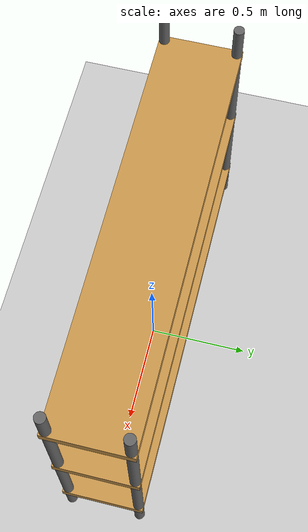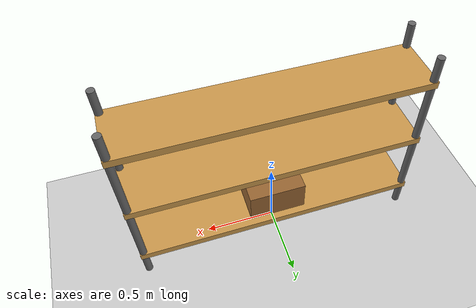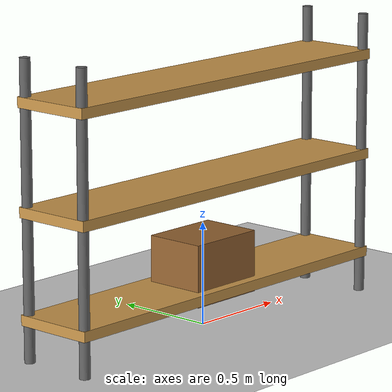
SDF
<?xml version="1.0" ?>
<sdf version="1.6">
  <world name="default">

    <!-- 地面 -->
    <include>
      <uri>model://ground_plane</uri>
    </include>

    <include>
      <uri>model://three_layer_shelf</uri>
      <pose>0 0 0 0 0 0</pose>
    </include>

    <include>
      <uri>model://simple_cardboard_box</uri>
      <pose>0 0 0.3 0 0 0</pose>
    </include>

  </world>
</sdf>

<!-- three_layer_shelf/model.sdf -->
<sdf version="1.6">
  <model name="three_layer_shelf">
    <static>true</static>

    <link name="shelf_1">
      <pose>0 0 0.2 0 0 0</pose>
      <collision name="collision">
        <geometry>
          <box>
            <size>2.0 0.4 0.05</size>
          </box>
        </geometry>
      </collision>
      <visual name="visual">
        <geometry>
          <box>
            <size>2.0 0.4 0.05</size>
          </box>
        </geometry>
        <material>
          <ambient>0.8 0.6 0.3 1</ambient>
          <diffuse>0.8 0.6 0.3 1</diffuse>
        </material>
      </visual>
    </link>

    <link name="shelf_2">
      <pose>0 0 0.7 0 0 0</pose>
      <collision name="collision">
        <geometry>
          <box>
            <size>2.0 0.4 0.05</size>
          </box>
        </geometry>
      </collision>
      <visual name="visual">
        <geometry>
          <box>
            <size>2.0 0.4 0.05</size>
          </box>
        </geometry>
        <material>
          <ambient>0.8 0.6 0.3 1</ambient>
          <diffuse>0.8 0.6 0.3 1</diffuse>
        </material>
      </visual>
    </link>

    <link name="shelf_3">
      <pose>0 0 1.2 0 0 0</pose>
      <collision name="collision">
        <geometry>
          <box>
            <size>2.0 0.4 0.05</size>
          </box>
        </geometry>
      </collision>
      <visual name="visual">
        <geometry>
          <box>
            <size>2.0 0.4 0.05</size>
          </box>
        </geometry>
        <material>
          <ambient>0.8 0.6 0.3 1</ambient>
          <diffuse>0.8 0.6 0.3 1</diffuse>
        </material>
      </visual>
    </link>

    <link name="post_1">
      <pose>-0.975 -0.17500000000000002 0.7 0 0 0</pose>
      <collision name="collision">
        <geometry>
          <cylinder>
            <radius>0.025</radius>
            <length>1.4</length>
          </cylinder>
        </geometry>
      </collision>
      <visual name="visual">
        <geometry>
          <cylinder>
            <radius>0.025</radius>
            <length>1.4</length>
          </cylinder>
        </geometry>
        <material>
          <ambient>0.4 0.4 0.4 1</ambient>
          <diffuse>0.4 0.4 0.4 1</diffuse>
        </material>
      </visual>
    </link>

    <link name="post_2">
      <pose>-0.975 0.17500000000000002 0.7 0 0 0</pose>
      <collision name="collision">
        <geometry>
          <cylinder>
            <radius>0.025</radius>
            <length>1.4</length>
          </cylinder>
        </geometry>
      </collision>
      <visual name="visual">
        <geometry>
          <cylinder>
            <radius>0.025</radius>
            <length>1.4</length>
          </cylinder>
        </geometry>
        <material>
          <ambient>0.4 0.4 0.4 1</ambient>
          <diffuse>0.4 0.4 0.4 1</diffuse>
        </material>
      </visual>
    </link>

    <link name="post_3">
      <pose>0.975 -0.17500000000000002 0.7 0 0 0</pose>
      <collision name="collision">
        <geometry>
          <cylinder>
            <radius>0.025</radius>
            <length>1.4</length>
          </cylinder>
        </geometry>
      </collision>
      <visual name="visual">
        <geometry>
          <cylinder>
            <radius>0.025</radius>
            <length>1.4</length>
          </cylinder>
        </geometry>
        <material>
          <ambient>0.4 0.4 0.4 1</ambient>
          <diffuse>0.4 0.4 0.4 1</diffuse>
        </material>
      </visual>
    </link>

    <link name="post_4">
      <pose>0.975 0.17500000000000002 0.7 0 0 0</pose>
      <collision name="collision">
        <geometry>
          <cylinder>
            <radius>0.025</radius>
            <length>1.4</length>
          </cylinder>
        </geometry>
      </collision>
      <visual name="visual">
        <geometry>
          <cylinder>
            <radius>0.025</radius>
            <length>1.4</length>
          </cylinder>
        </geometry>
        <material>
          <ambient>0.4 0.4 0.4 1</ambient>
          <diffuse>0.4 0.4 0.4 1</diffuse>
        </material>
      </visual>
    </link>

</model>
</sdf>

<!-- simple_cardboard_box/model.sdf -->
<sdf version="1.6">
  <model name="simple_cardboard_box">
    <static>false</static>
    <link name="box_link">
      <inertial>
        <mass>1.0</mass>
        <inertia>
          <ixx>0.01</ixx>
          <iyy>0.01</iyy>
          <izz>0.01</izz>
        </inertia>
      </inertial>
      <collision name="collision">
        <geometry>
          <box>
            <size>0.4 0.3 0.3</size>
          </box>
        </geometry>
      </collision>
      <visual name="visual">
        <geometry>
          <box>
            <size>0.4 0.3 0.3</size>
          </box>
        </geometry>
        <material>
          <ambient>0.6 0.4 0.2 1</ambient>
          <diffuse>0.6 0.4 0.2 1</diffuse>
        </material>
      </visual>
    </link>
  </model>
</sdf>
